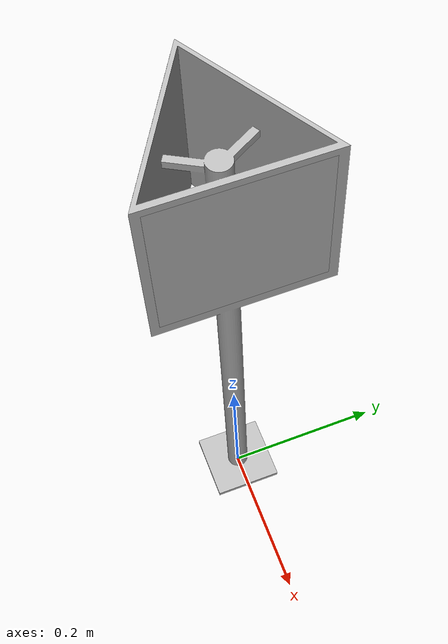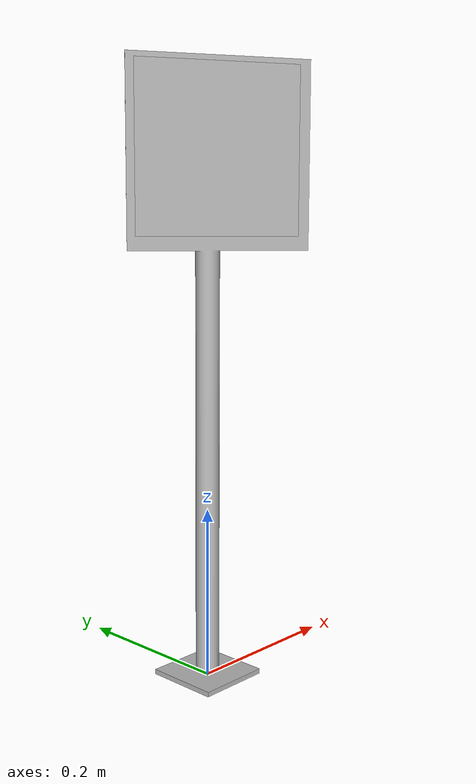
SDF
<?xml version="1.0" ?>
<sdf version="1.5">
  <model name="aruco_pole">
    <pose>0 0 0 0 0 0</pose>
    <static>true</static>
    <link name="body">
      <visual name="pole_visual">
        <geometry>
          <mesh><uri>model://aruco_pole/media/pole.dae</uri></mesh>
        </geometry>
      </visual>
      <collision name="collision">
        <geometry>
          <mesh><uri>model://aruco_pole/media/pole.dae</uri></mesh>
        </geometry>
      </collision>

      <visual name="aruco_square_1">
        <pose>-0.033734 -0.048977 0.602716 2.0943951 1.57079633 0</pose> <!-- position relative to pole -->
        <geometry>
            <mesh><uri>model://aruco_pole/media/square.dae</uri></mesh>
        </geometry>
        <material>
          <script>
            <uri>model://aruco_pole/materials/scripts</uri>
            <uri>model://aruco_pole/materials/textures</uri>
            <name>ArucoTexture</name>
          </script>
        </material>
      </visual>
      <visual name="aruco_square_2">
        <pose>0.057121 0.000381 0.602716 0 1.57079633 0</pose> <!-- position relative to pole -->
        <geometry>
            <mesh><uri>model://aruco_pole/media/square.dae</uri></mesh>
        </geometry>
        <material>
          <script>
            <uri>model://aruco_pole/materials/scripts</uri>
            <uri>model://aruco_pole/materials/textures</uri>
            <name>ArucoTexture</name>
          </script>
        </material>
      </visual>
      <visual name="aruco_square_3">
        <pose>-0.031142 0.052622 0.602716 -2.0943951 1.57079633 0</pose> <!-- position relative to pole -->
        <geometry>
            <mesh><uri>model://aruco_pole/media/square.dae</uri></mesh>
        </geometry>
        <material>
          <script>
            <uri>model://aruco_pole/materials/scripts</uri>
            <uri>model://aruco_pole/materials/textures</uri>
            <name>ArucoTexture</name>
          </script>
        </material>
      </visual>

    </link>
  </model>
</sdf>
